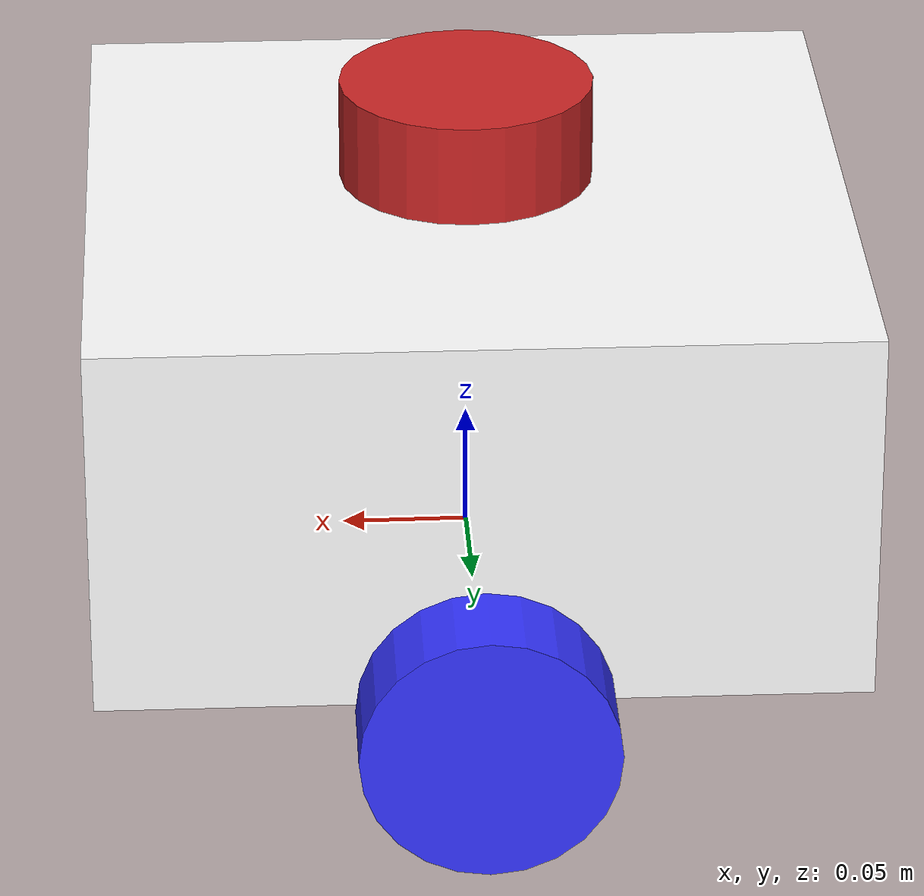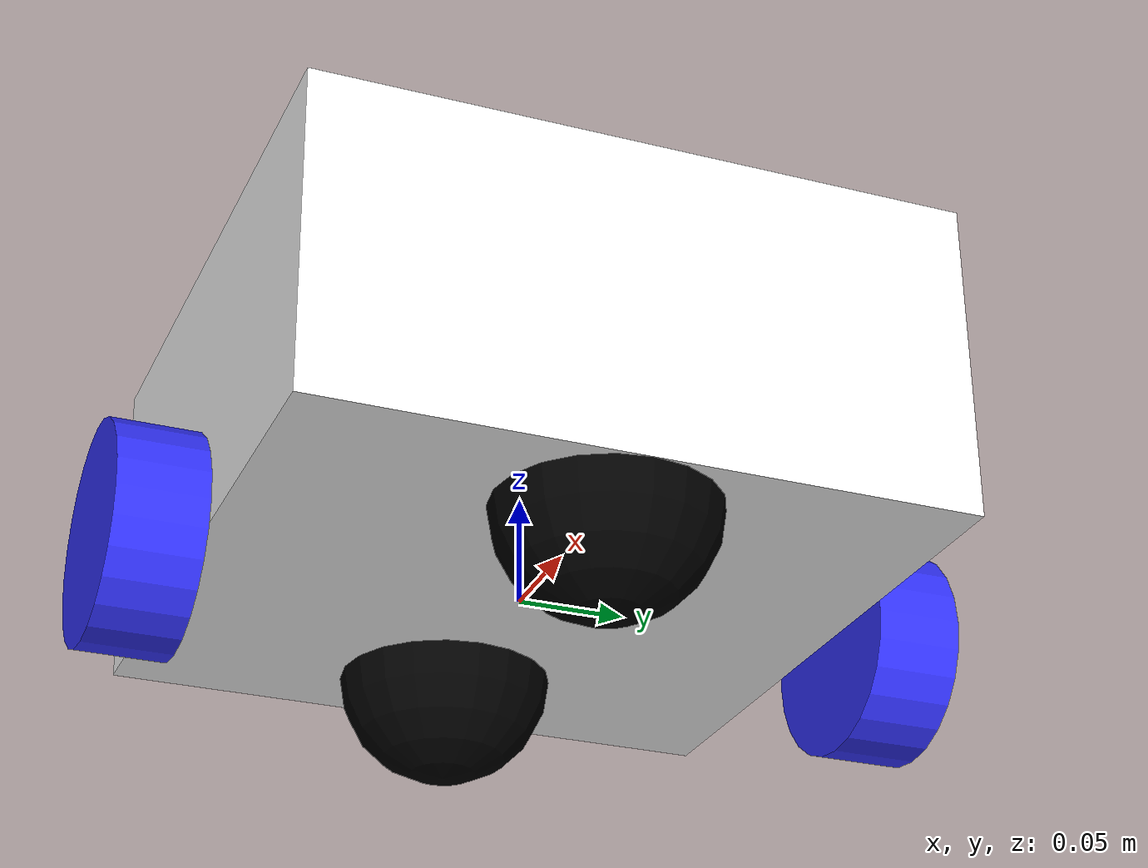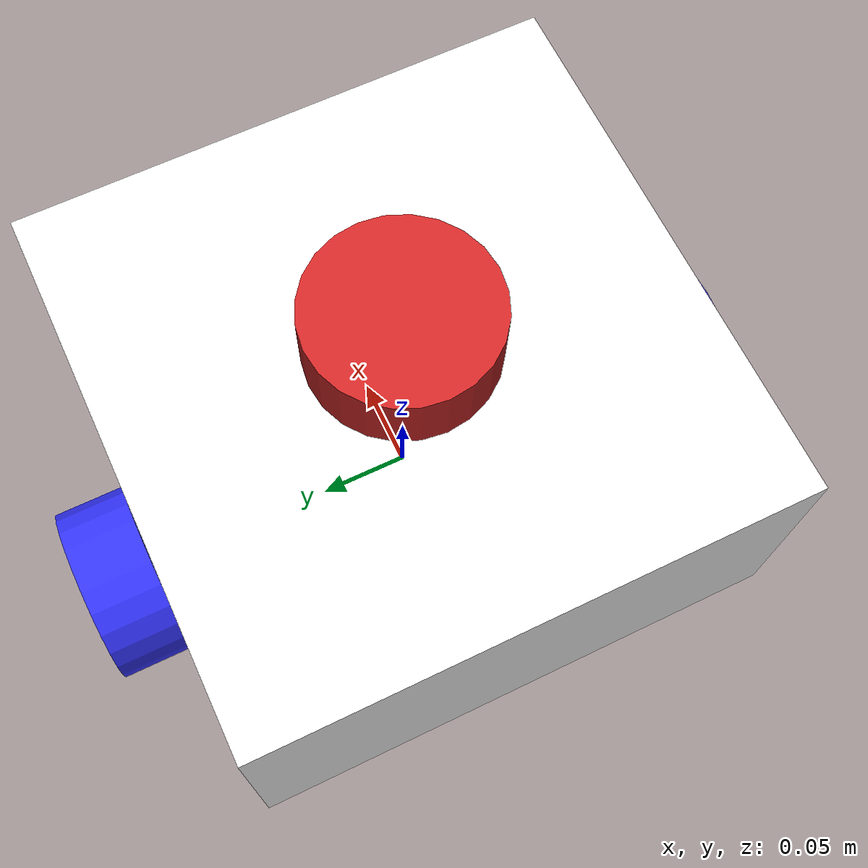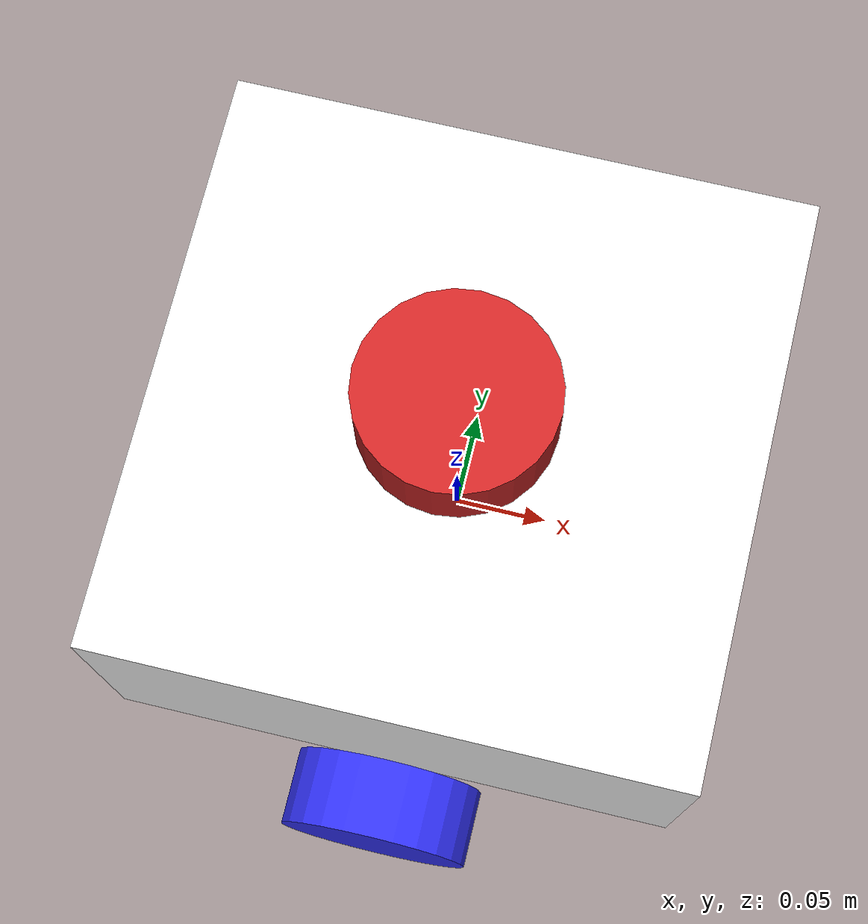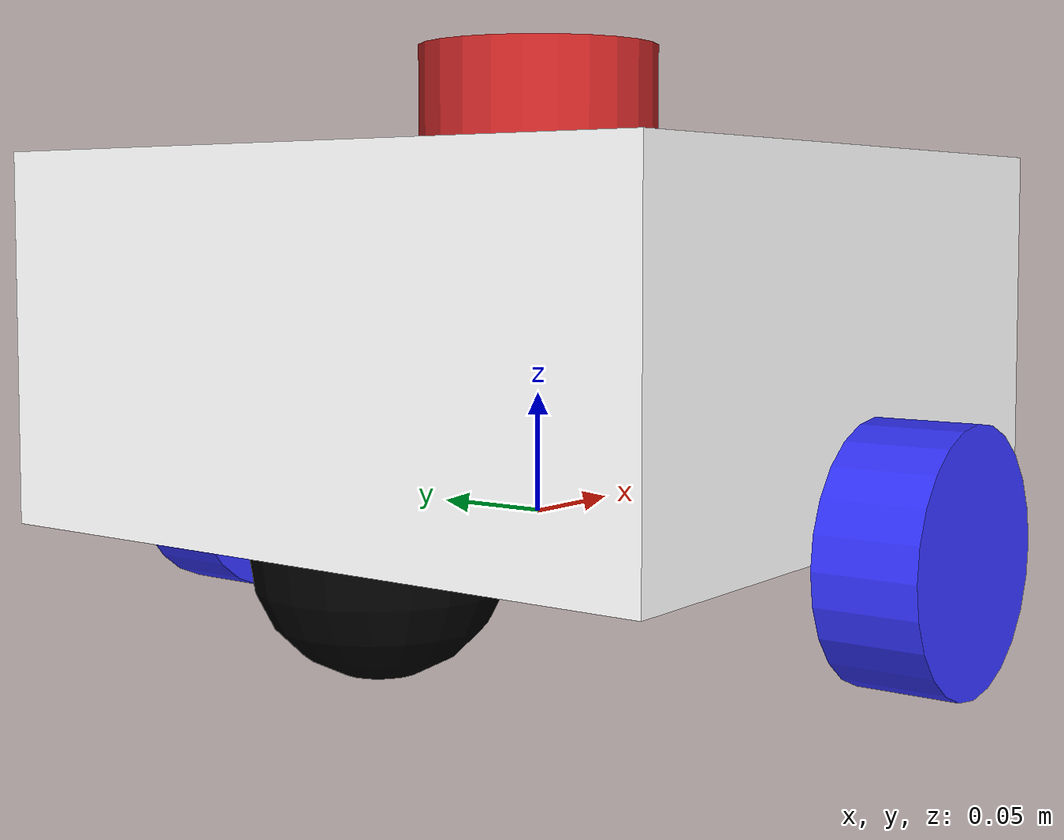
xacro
<?xml version="1.0"?>
<robot xmlns:xacro="http://www.ros.org/wiki/xacro"  name="clibo">

    <xacro:arg name="use_ros2_control" default="true" />
    <xacro:arg name="sim_mode" default="false" />

    <xacro:include filename="robot_core.xacro" />

    <xacro:if value="$(arg use_ros2_control)">
        <xacro:include filename="ros2_control.xacro" />
    </xacro:if>
    <xacro:unless value="$(arg use_ros2_control)">
        <xacro:include filename="gazebo_control.xacro" />
    </xacro:unless>
    <xacro:include filename="lidar.xacro" />

    <xacro:include filename="face.xacro" />

</robot>

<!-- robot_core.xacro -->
<robot xmlns:xacro="http://www.ros.org/wiki/xacro">

    <xacro:include filename="inertial_macros.xacro"/>

    <material name="white">
        <color rgba="1 1 1 1"/>
    </material>

    <material name="orange">
        <color rgba="1 0.3 0.1 1"/>
    </material>

    <material name="blue">
        <color rgba="0.2 0.2 1 1"/>
    </material>

    <material name="black">
        <color rgba="0 0 0 1"/>
    </material>

    <!-- BASE LINK -->

    <link name="base_link">

    </link>

    <!-- CHASSIS LINK -->

    <joint name="chassis_joint" type="fixed">
        <parent link="base_link"/>
        <child link="chassis"/>
        <origin xyz="-0.15 0 0"/>
    </joint>

    <link name="chassis">
        <visual>
            <origin xyz="0.15 0 0.075"/>
            <geometry>
                <box size="0.3 0.3 0.15"/>
            </geometry>
            <material name ="white"/>
        </visual>
        <collision>
            <origin xyz="0.15 0 0.075"/>
            <geometry>
                <box size="0.3 0.3 0.15"/>
            </geometry>
        </collision>
        <xacro:inertial_box mass="0.5" x="0.3" y="0.3" z="0.15">
            <origin xyz="0.15 0 0.075" rpy="0 0 0"/>
        </xacro:inertial_box>
    </link>

    <gazebo reference="chassis">
        <material>Gazebo/White</material>
    </gazebo>

    <!-- LEFT WHEEL LINK -->
    <joint name="left_wheel_joint" type="continuous">
        <parent link="base_link"/>
        <child link="left_wheel"/>
        <origin xyz="0 0.175 0" rpy="-${pi/2} 0 0"/>
        <axis xyz="0 0 1"/>
    </joint>

    <link name="left_wheel">
        <visual>
            <geometry>
                <cylinder radius="0.05" length="0.04"/>
            </geometry>
            <material name="blue"/>
        </visual>
        <collision>
            <geometry>
                <cylinder radius="0.05" length="0.04"/>
            </geometry>
        </collision>
        <xacro:inertial_cylinder mass="0.1" length="0.04" radius="0.05">
            <origin xyz="0 0 0 " rpy="0 0 0"/>
        </xacro:inertial_cylinder>
    </link>
    <gazebo reference="left_wheel">
        <material>Gazebo/Blue</material>
    </gazebo>

    <!-- RIGHT WHEEL LINK -->
    <joint name="right_wheel_joint" type="continuous">
        <parent link="base_link"/>
        <child link="right_wheel"/>
        <origin xyz="0 -0.175 0" rpy="${pi/2} 0 0"/>
        <axis xyz="0 0 -1"/>
    </joint>

    <link name="right_wheel">
        <visual>
            <geometry>
                <cylinder radius="0.05" length="0.04"/>
            </geometry>
            <material name="blue"/>
        </visual>
        <collision>
            <geometry>
                <cylinder radius="0.05" length="0.04"/>
            </geometry>
        </collision>
        <xacro:inertial_cylinder mass="0.1" length="0.04" radius="0.05">
            <origin xyz="0 0 0 " rpy="0 0 0"/>
        </xacro:inertial_cylinder>
    </link>
    <gazebo reference="right_wheel">
        <material>Gazebo/Blue</material>
    </gazebo>

    <!-- CASTER WHEEL FRONT LINK -->

    <joint name="caster_wheel_front_joint" type="fixed">
        <parent link="base_link"/>
        <child link="caster_wheel_front"/>
        <origin xyz="0.1 0 0"/>
    </joint>

    <link name="caster_wheel_front">
        <visual>
            <geometry>
                <sphere radius="0.05"/>
            </geometry>
            <material name="black"/>
        </visual>
        <collision>
            <geometry>
                <sphere radius="0.05"/>
            </geometry>
        </collision>
        <xacro:inertial_sphere mass="0.1" radius="0.05">
            <origin xyz="0 0 0" rpy="0 0 0"/>
        </xacro:inertial_sphere>
    </link>

    <gazebo reference="caster_wheel_front">
        <material>Gazebo/Black</material>
        <mu1 value="0.001"/>
        <mu2 value="0.001"/>
    </gazebo>

    <!-- CASTER WHEEL BACK LINK -->

    <joint name="caster_wheel_back_joint" type="fixed">
        <parent link="base_link"/>
        <child link="caster_wheel_back"/>
        <origin xyz="-0.1 0 0"/>
    </joint>

    <link name="caster_wheel_back">
        <visual>
            <geometry>
                <sphere radius="0.05"/>
            </geometry>
            <material name="black"/>
        </visual>
        <collision>
            <geometry>
                <sphere radius="0.05"/>
            </geometry>
        </collision>
        <xacro:inertial_sphere mass="0.1" radius="0.05">
            <origin xyz="0 0 0" rpy="0 0 0"/>
        </xacro:inertial_sphere>
    </link>

    <gazebo reference="caster_wheel_back">
        <material>Gazebo/Black</material>
        <mu1 value="0.001"/>
        <mu2 value="0.001"/>
    </gazebo>

</robot>

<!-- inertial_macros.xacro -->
<robot xmlns:xacro="http://www.ros.org/wiki/xacro" >

    <!-- Specify some standard inertial calculations https://en.wikipedia.org/wiki/List_of_moments_of_inertia -->
    <!-- These make use of xacro's mathematical functionality -->

    <xacro:macro name="inertial_sphere" params="mass radius *origin">
        <inertial>
            <xacro:insert_block name="origin"/>
            <mass value="${mass}" />
            <inertia ixx="${(2/5) * mass * (radius*radius)}" ixy="0.0" ixz="0.0"
                    iyy="${(2/5) * mass * (radius*radius)}" iyz="0.0"
                    izz="${(2/5) * mass * (radius*radius)}" />
        </inertial>
    </xacro:macro>

    <xacro:macro name="inertial_box" params="mass x y z *origin">
        <inertial>
            <xacro:insert_block name="origin"/>
            <mass value="${mass}" />
            <inertia ixx="${(1/12) * mass * (y*y+z*z)}" ixy="0.0" ixz="0.0"
                    iyy="${(1/12) * mass * (x*x+z*z)}" iyz="0.0"
                    izz="${(1/12) * mass * (x*x+y*y)}" />
        </inertial>
    </xacro:macro>

    <xacro:macro name="inertial_cylinder" params="mass length radius *origin">
        <inertial>
            <xacro:insert_block name="origin"/>
            <mass value="${mass}" />
            <inertia ixx="${(1/12) * mass * (3*radius*radius + length*length)}" ixy="0.0" ixz="0.0"
                    iyy="${(1/12) * mass * (3*radius*radius + length*length)}" iyz="0.0"
                    izz="${(1/2) * mass * (radius*radius)}" />
        </inertial>
    </xacro:macro>

    <xacro:macro name="inertial_doughnut" params="mass x y z *origin">
        <inertial>
            <xacro:insert_block name="origin"/>
            <mass value="${mass}" />
            <inertia ixx="${(1/12) * mass * (y*y + z*z)}" ixy="0.0" ixz="0.0"
                    iyy="${(1/12) * mass * (x*x + z*z)}" iyz="0.0"
                    izz="${(1/12) * mass * (x*x + y*y)}" />
        </inertial>
    </xacro:macro>

</robot>

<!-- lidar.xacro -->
<robot xmlns:xacro="http://www.ros.org/wiki/xacro">

    <joint name="laser_joint" type="fixed">
        <parent link="chassis"/>
        <child link="laser_frame"/>
        <origin xyz="0.15 0 0.175" rpy="0 0 0"/>
    </joint>

    <link name ="laser_frame">
        <visual>
            <geometry>
                <cylinder radius="0.05" length="0.04"/>
            </geometry>
            <material name="red"/>
        </visual>
        <collision>
            <geometry>
                <cylinder radius="0.05" length="0.04"/>
            </geometry>
        </collision>
        <xacro:inertial_cylinder mass="0.1" length="0.04" radius="0.05">
            <origin xyz="0 0 0 " rpy="0 0 0"/>
        </xacro:inertial_cylinder>
    </link>

    <gazebo reference="laser_frame">
        <material>Gazebo/Red</material>

        <sensor name="laser" type="ray">
            <pose>0 0 0 0 0 0</pose>
            <visualize>true</visualize>
            <update_rate>10</update_rate>
            <ray>
                <scan>
                    <horizontal>
                        <samples>360</samples>
                        <min_angle>-3.14</min_angle>
                        <max_angle>3.14</max_angle>
                    </horizontal>
                </scan>
                <range>
                    <min>0.3</min>
                    <max>12</max>
                </range>
            </ray>
            <plugin name="laser_controller" filename="libgazebo_ros_ray_sensor.so">
                <ros>
                    <argument>~/out:=scan</argument>
                </ros>
                <output_type>sensor_msgs/LaserScan</output_type>
                <frame_name>laser_frame</frame_name>
            </plugin>
        </sensor>
    </gazebo>

</robot>

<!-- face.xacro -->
<robot xmlns:xacro="http://www.ros.org/wiki/xacro" >

    <joint name="face_joint" type="fixed">
        <parent link="chassis"/>
        <child link="face_link"/>
        <origin xyz="0.15 0 0.075" rpy="0 0 0"/>
    </joint>

    <link name="face_link">
        <visual>
            <origin xyz="0 0.05 0.01" rpy="0 ${pi/2} 0"/>
            <geometry>
                <cylinder radius="0.01" length="0.002"/>
            </geometry>
            <material name="black"/>
        </visual>

        <visual>
            <origin xyz="0 -0.05 0.01" rpy="0 ${pi/2} 0"/>
            <geometry>
                <cylinder radius="0.01" length="0.002"/>
            </geometry>
            <material name="black"/>
        </visual>

        <visual>
            <origin xyz="-0.011 0 -0.00" rpy="0 ${1.5} 0"/>
            <geometry>
                <cylinder radius="0.05" length="0.02"/>
            </geometry>
            <material name="red"/>
        </visual>
    </link>

    <gazebo reference="face_link">
        <material>Gazebo/Black</material>
    </gazebo>

</robot>
